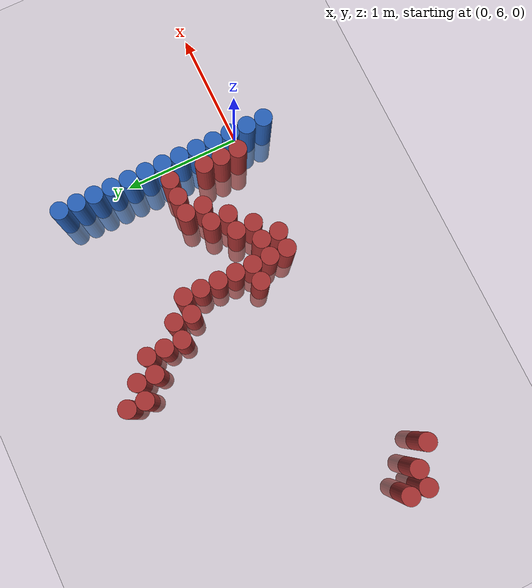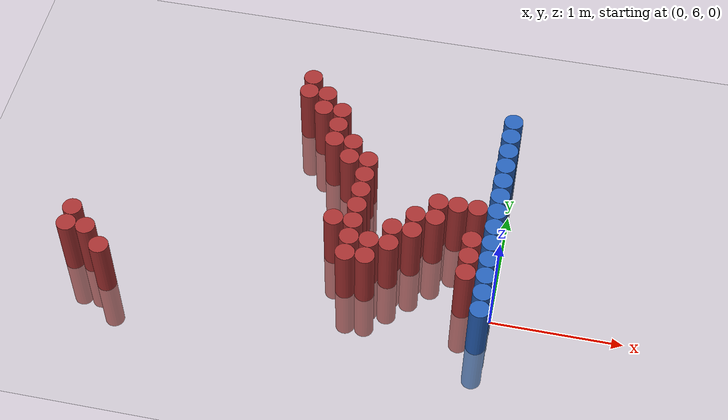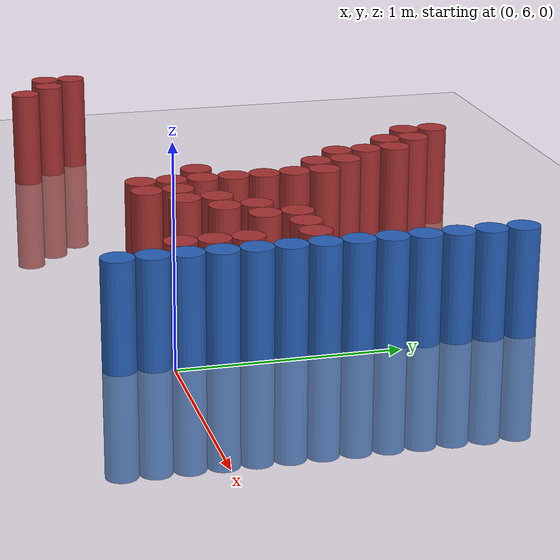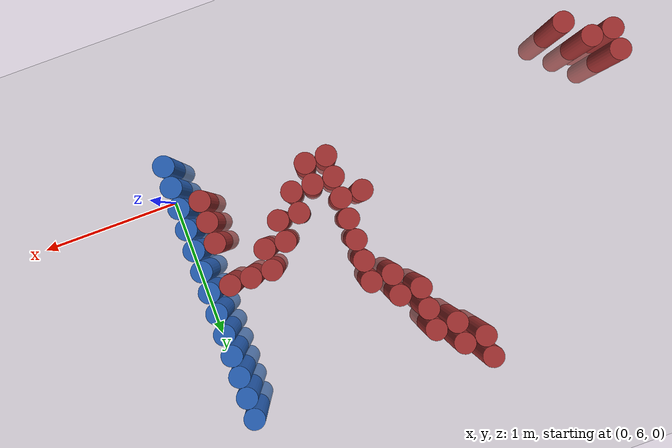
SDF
<sdf version="1.6">
 <world name="default">
  <model name="ground_plane">
   <static>1</static>
   <link name="link">
    <collision name="collision">
     <geometry><plane><normal>0 0 1</normal><size>100 100</size></plane></geometry>
     <surface><friction><ode><mu>100</mu><mu2>50</mu2></ode></friction></surface>
    </collision>
    <visual name="visual">
     <cast_shadows>0</cast_shadows>
     <geometry><plane><normal>0 0 1</normal><size>100 100</size></plane></geometry>
     <material>
      <script><uri>file://media/materials/scripts/gazebo.material</uri><name>Gazebo/Grey</name></script>
     </material>
    </visual>
   </link>
  </model>
  <model name="unit_cylinder_163">
   <static>1</static>
   <pose>-3.225000 5.925000 0.000000 0.000000 0.000000 0.000000</pose>
   <link name="link">
    <inertial>
     <mass>1</mass>
     <inertia><ixx>0.145833</ixx><ixy>0</ixy><ixz>0</ixz><iyy>0.145833</iyy><iyz>0</iyz><izz>0.125</izz></inertia>
    </inertial>
    <collision name="collision">
     <geometry><cylinder><radius>0.075000</radius><length>1</length></cylinder></geometry>
    </collision>
    <visual name="visual">
     <geometry><cylinder><radius>0.075000</radius><length>1</length></cylinder></geometry>
     <material>
      <ambient>0.648000 0.192000 0.192000 1</ambient>
      <diffuse>0.648000 0.192000 0.192000 1</diffuse>
     </material>
     <material>
      <script><name>Gazebo/Grey</name><uri>file://media/materials/scripts/gazebo.material</uri></script>
     </material>
    </visual>
   </link>
  </model>
  <model name="unit_cylinder_164">
   <static>1</static>
   <pose>-3.225000 6.075000 0.000000 0.000000 0.000000 0.000000</pose>
   <link name="link">
    <inertial>
     <mass>1</mass>
     <inertia><ixx>0.145833</ixx><ixy>0</ixy><ixz>0</ixz><iyy>0.145833</iyy><iyz>0</iyz><izz>0.125</izz></inertia>
    </inertial>
    <collision name="collision">
     <geometry><cylinder><radius>0.075000</radius><length>1</length></cylinder></geometry>
    </collision>
    <visual name="visual">
     <geometry><cylinder><radius>0.075000</radius><length>1</length></cylinder></geometry>
     <material>
      <ambient>0.648000 0.192000 0.192000 1</ambient>
      <diffuse>0.648000 0.192000 0.192000 1</diffuse>
     </material>
     <material>
      <script><name>Gazebo/Grey</name><uri>file://media/materials/scripts/gazebo.material</uri></script>
     </material>
    </visual>
   </link>
  </model>
  <model name="unit_cylinder_167">
   <static>1</static>
   <pose>-3.075000 5.925000 0.000000 0.000000 0.000000 0.000000</pose>
   <link name="link">
    <inertial>
     <mass>1</mass>
     <inertia><ixx>0.145833</ixx><ixy>0</ixy><ixz>0</ixz><iyy>0.145833</iyy><iyz>0</iyz><izz>0.125</izz></inertia>
    </inertial>
    <collision name="collision">
     <geometry><cylinder><radius>0.075000</radius><length>1</length></cylinder></geometry>
    </collision>
    <visual name="visual">
     <geometry><cylinder><radius>0.075000</radius><length>1</length></cylinder></geometry>
     <material>
      <ambient>0.648000 0.192000 0.192000 1</ambient>
      <diffuse>0.648000 0.192000 0.192000 1</diffuse>
     </material>
     <material>
      <script><name>Gazebo/Grey</name><uri>file://media/materials/scripts/gazebo.material</uri></script>
     </material>
    </visual>
   </link>
  </model>
  <model name="unit_cylinder_170">
   <static>1</static>
   <pose>-2.925000 5.775000 0.000000 0.000000 0.000000 0.000000</pose>
   <link name="link">
    <inertial>
     <mass>1</mass>
     <inertia><ixx>0.145833</ixx><ixy>0</ixy><ixz>0</ixz><iyy>0.145833</iyy><iyz>0</iyz><izz>0.125</izz></inertia>
    </inertial>
    <collision name="collision">
     <geometry><cylinder><radius>0.075000</radius><length>1</length></cylinder></geometry>
    </collision>
    <visual name="visual">
     <geometry><cylinder><radius>0.075000</radius><length>1</length></cylinder></geometry>
     <material>
      <ambient>0.648000 0.192000 0.192000 1</ambient>
      <diffuse>0.648000 0.192000 0.192000 1</diffuse>
     </material>
     <material>
      <script><name>Gazebo/Grey</name><uri>file://media/materials/scripts/gazebo.material</uri></script>
     </material>
    </visual>
   </link>
  </model>
  <model name="unit_cylinder_190">
   <static>1</static>
   <pose>-1.725000 7.575000 0.000000 0.000000 0.000000 0.000000</pose>
   <link name="link">
    <inertial>
     <mass>1</mass>
     <inertia><ixx>0.145833</ixx><ixy>0</ixy><ixz>0</ixz><iyy>0.145833</iyy><iyz>0</iyz><izz>0.125</izz></inertia>
    </inertial>
    <collision name="collision">
     <geometry><cylinder><radius>0.075000</radius><length>1</length></cylinder></geometry>
    </collision>
    <visual name="visual">
     <geometry><cylinder><radius>0.075000</radius><length>1</length></cylinder></geometry>
     <material>
      <ambient>0.648000 0.192000 0.192000 1</ambient>
      <diffuse>0.648000 0.192000 0.192000 1</diffuse>
     </material>
     <material>
      <script><name>Gazebo/Grey</name><uri>file://media/materials/scripts/gazebo.material</uri></script>
     </material>
    </visual>
   </link>
  </model>
  <model name="unit_cylinder_191">
   <static>1</static>
   <pose>-1.725000 7.725000 0.000000 0.000000 0.000000 0.000000</pose>
   <link name="link">
    <inertial>
     <mass>1</mass>
     <inertia><ixx>0.145833</ixx><ixy>0</ixy><ixz>0</ixz><iyy>0.145833</iyy><iyz>0</iyz><izz>0.125</izz></inertia>
    </inertial>
    <collision name="collision">
     <geometry><cylinder><radius>0.075000</radius><length>1</length></cylinder></geometry>
    </collision>
    <visual name="visual">
     <geometry><cylinder><radius>0.075000</radius><length>1</length></cylinder></geometry>
     <material>
      <ambient>0.648000 0.192000 0.192000 1</ambient>
      <diffuse>0.648000 0.192000 0.192000 1</diffuse>
     </material>
     <material>
      <script><name>Gazebo/Grey</name><uri>file://media/materials/scripts/gazebo.material</uri></script>
     </material>
    </visual>
   </link>
  </model>
  <model name="unit_cylinder_195">
   <static>1</static>
   <pose>-1.575000 7.425000 0.000000 0.000000 0.000000 0.000000</pose>
   <link name="link">
    <inertial>
     <mass>1</mass>
     <inertia><ixx>0.145833</ixx><ixy>0</ixy><ixz>0</ixz><iyy>0.145833</iyy><iyz>0</iyz><izz>0.125</izz></inertia>
    </inertial>
    <collision name="collision">
     <geometry><cylinder><radius>0.075000</radius><length>1</length></cylinder></geometry>
    </collision>
    <visual name="visual">
     <geometry><cylinder><radius>0.075000</radius><length>1</length></cylinder></geometry>
     <material>
      <ambient>0.648000 0.192000 0.192000 1</ambient>
      <diffuse>0.648000 0.192000 0.192000 1</diffuse>
     </material>
     <material>
      <script><name>Gazebo/Grey</name><uri>file://media/materials/scripts/gazebo.material</uri></script>
     </material>
    </visual>
   </link>
  </model>
  <model name="unit_cylinder_196">
   <static>1</static>
   <pose>-1.575000 7.575000 0.000000 0.000000 0.000000 0.000000</pose>
   <link name="link">
    <inertial>
     <mass>1</mass>
     <inertia><ixx>0.145833</ixx><ixy>0</ixy><ixz>0</ixz><iyy>0.145833</iyy><iyz>0</iyz><izz>0.125</izz></inertia>
    </inertial>
    <collision name="collision">
     <geometry><cylinder><radius>0.075000</radius><length>1</length></cylinder></geometry>
    </collision>
    <visual name="visual">
     <geometry><cylinder><radius>0.075000</radius><length>1</length></cylinder></geometry>
     <material>
      <ambient>0.648000 0.192000 0.192000 1</ambient>
      <diffuse>0.648000 0.192000 0.192000 1</diffuse>
     </material>
     <material>
      <script><name>Gazebo/Grey</name><uri>file://media/materials/scripts/gazebo.material</uri></script>
     </material>
    </visual>
   </link>
  </model>
  <model name="unit_cylinder_198">
   <static>1</static>
   <pose>-1.425000 7.125000 0.000000 0.000000 0.000000 0.000000</pose>
   <link name="link">
    <inertial>
     <mass>1</mass>
     <inertia><ixx>0.145833</ixx><ixy>0</ixy><ixz>0</ixz><iyy>0.145833</iyy><iyz>0</iyz><izz>0.125</izz></inertia>
    </inertial>
    <collision name="collision">
     <geometry><cylinder><radius>0.075000</radius><length>1</length></cylinder></geometry>
    </collision>
    <visual name="visual">
     <geometry><cylinder><radius>0.075000</radius><length>1</length></cylinder></geometry>
     <material>
      <ambient>0.648000 0.192000 0.192000 1</ambient>
      <diffuse>0.648000 0.192000 0.192000 1</diffuse>
     </material>
     <material>
      <script><name>Gazebo/Grey</name><uri>file://media/materials/scripts/gazebo.material</uri></script>
     </material>
    </visual>
   </link>
  </model>
  <model name="unit_cylinder_199">
   <static>1</static>
   <pose>-1.425000 7.275000 0.000000 0.000000 0.000000 0.000000</pose>
   <link name="link">
    <inertial>
     <mass>1</mass>
     <inertia><ixx>0.145833</ixx><ixy>0</ixy><ixz>0</ixz><iyy>0.145833</iyy><iyz>0</iyz><izz>0.125</izz></inertia>
    </inertial>
    <collision name="collision">
     <geometry><cylinder><radius>0.075000</radius><length>1</length></cylinder></geometry>
    </collision>
    <visual name="visual">
     <geometry><cylinder><radius>0.075000</radius><length>1</length></cylinder></geometry>
     <material>
      <ambient>0.648000 0.192000 0.192000 1</ambient>
      <diffuse>0.648000 0.192000 0.192000 1</diffuse>
     </material>
     <material>
      <script><name>Gazebo/Grey</name><uri>file://media/materials/scripts/gazebo.material</uri></script>
     </material>
    </visual>
   </link>
  </model>
  <model name="unit_cylinder_200">
   <static>1</static>
   <pose>-1.425000 7.425000 0.000000 0.000000 0.000000 0.000000</pose>
   <link name="link">
    <inertial>
     <mass>1</mass>
     <inertia><ixx>0.145833</ixx><ixy>0</ixy><ixz>0</ixz><iyy>0.145833</iyy><iyz>0</iyz><izz>0.125</izz></inertia>
    </inertial>
    <collision name="collision">
     <geometry><cylinder><radius>0.075000</radius><length>1</length></cylinder></geometry>
    </collision>
    <visual name="visual">
     <geometry><cylinder><radius>0.075000</radius><length>1</length></cylinder></geometry>
     <material>
      <ambient>0.648000 0.192000 0.192000 1</ambient>
      <diffuse>0.648000 0.192000 0.192000 1</diffuse>
     </material>
     <material>
      <script><name>Gazebo/Grey</name><uri>file://media/materials/scripts/gazebo.material</uri></script>
     </material>
    </visual>
   </link>
  </model>
  <model name="unit_cylinder_204">
   <static>1</static>
   <pose>-1.275000 6.375000 0.000000 0.000000 0.000000 0.000000</pose>
   <link name="link">
    <inertial>
     <mass>1</mass>
     <inertia><ixx>0.145833</ixx><ixy>0</ixy><ixz>0</ixz><iyy>0.145833</iyy><iyz>0</iyz><izz>0.125</izz></inertia>
    </inertial>
    <collision name="collision">
     <geometry><cylinder><radius>0.075000</radius><length>1</length></cylinder></geometry>
    </collision>
    <visual name="visual">
     <geometry><cylinder><radius>0.075000</radius><length>1</length></cylinder></geometry>
     <material>
      <ambient>0.648000 0.192000 0.192000 1</ambient>
      <diffuse>0.648000 0.192000 0.192000 1</diffuse>
     </material>
     <material>
      <script><name>Gazebo/Grey</name><uri>file://media/materials/scripts/gazebo.material</uri></script>
     </material>
    </visual>
   </link>
  </model>
  <model name="unit_cylinder_205">
   <static>1</static>
   <pose>-1.275000 6.975000 0.000000 0.000000 0.000000 0.000000</pose>
   <link name="link">
    <inertial>
     <mass>1</mass>
     <inertia><ixx>0.145833</ixx><ixy>0</ixy><ixz>0</ixz><iyy>0.145833</iyy><iyz>0</iyz><izz>0.125</izz></inertia>
    </inertial>
    <collision name="collision">
     <geometry><cylinder><radius>0.075000</radius><length>1</length></cylinder></geometry>
    </collision>
    <visual name="visual">
     <geometry><cylinder><radius>0.075000</radius><length>1</length></cylinder></geometry>
     <material>
      <ambient>0.648000 0.192000 0.192000 1</ambient>
      <diffuse>0.648000 0.192000 0.192000 1</diffuse>
     </material>
     <material>
      <script><name>Gazebo/Grey</name><uri>file://media/materials/scripts/gazebo.material</uri></script>
     </material>
    </visual>
   </link>
  </model>
  <model name="unit_cylinder_206">
   <static>1</static>
   <pose>-1.275000 7.125000 0.000000 0.000000 0.000000 0.000000</pose>
   <link name="link">
    <inertial>
     <mass>1</mass>
     <inertia><ixx>0.145833</ixx><ixy>0</ixy><ixz>0</ixz><iyy>0.145833</iyy><iyz>0</iyz><izz>0.125</izz></inertia>
    </inertial>
    <collision name="collision">
     <geometry><cylinder><radius>0.075000</radius><length>1</length></cylinder></geometry>
    </collision>
    <visual name="visual">
     <geometry><cylinder><radius>0.075000</radius><length>1</length></cylinder></geometry>
     <material>
      <ambient>0.648000 0.192000 0.192000 1</ambient>
      <diffuse>0.648000 0.192000 0.192000 1</diffuse>
     </material>
     <material>
      <script><name>Gazebo/Grey</name><uri>file://media/materials/scripts/gazebo.material</uri></script>
     </material>
    </visual>
   </link>
  </model>
  <model name="unit_cylinder_208">
   <static>1</static>
   <pose>-1.125000 6.075000 0.000000 0.000000 0.000000 0.000000</pose>
   <link name="link">
    <inertial>
     <mass>1</mass>
     <inertia><ixx>0.145833</ixx><ixy>0</ixy><ixz>0</ixz><iyy>0.145833</iyy><iyz>0</iyz><izz>0.125</izz></inertia>
    </inertial>
    <collision name="collision">
     <geometry><cylinder><radius>0.075000</radius><length>1</length></cylinder></geometry>
    </collision>
    <visual name="visual">
     <geometry><cylinder><radius>0.075000</radius><length>1</length></cylinder></geometry>
     <material>
      <ambient>0.648000 0.192000 0.192000 1</ambient>
      <diffuse>0.648000 0.192000 0.192000 1</diffuse>
     </material>
     <material>
      <script><name>Gazebo/Grey</name><uri>file://media/materials/scripts/gazebo.material</uri></script>
     </material>
    </visual>
   </link>
  </model>
  <model name="unit_cylinder_209">
   <static>1</static>
   <pose>-1.125000 6.225000 0.000000 0.000000 0.000000 0.000000</pose>
   <link name="link">
    <inertial>
     <mass>1</mass>
     <inertia><ixx>0.145833</ixx><ixy>0</ixy><ixz>0</ixz><iyy>0.145833</iyy><iyz>0</iyz><izz>0.125</izz></inertia>
    </inertial>
    <collision name="collision">
     <geometry><cylinder><radius>0.075000</radius><length>1</length></cylinder></geometry>
    </collision>
    <visual name="visual">
     <geometry><cylinder><radius>0.075000</radius><length>1</length></cylinder></geometry>
     <material>
      <ambient>0.648000 0.192000 0.192000 1</ambient>
      <diffuse>0.648000 0.192000 0.192000 1</diffuse>
     </material>
     <material>
      <script><name>Gazebo/Grey</name><uri>file://media/materials/scripts/gazebo.material</uri></script>
     </material>
    </visual>
   </link>
  </model>
  <model name="unit_cylinder_210">
   <static>1</static>
   <pose>-1.125000 6.375000 0.000000 0.000000 0.000000 0.000000</pose>
   <link name="link">
    <inertial>
     <mass>1</mass>
     <inertia><ixx>0.145833</ixx><ixy>0</ixy><ixz>0</ixz><iyy>0.145833</iyy><iyz>0</iyz><izz>0.125</izz></inertia>
    </inertial>
    <collision name="collision">
     <geometry><cylinder><radius>0.075000</radius><length>1</length></cylinder></geometry>
    </collision>
    <visual name="visual">
     <geometry><cylinder><radius>0.075000</radius><length>1</length></cylinder></geometry>
     <material>
      <ambient>0.648000 0.192000 0.192000 1</ambient>
      <diffuse>0.648000 0.192000 0.192000 1</diffuse>
     </material>
     <material>
      <script><name>Gazebo/Grey</name><uri>file://media/materials/scripts/gazebo.material</uri></script>
     </material>
    </visual>
   </link>
  </model>
  <model name="unit_cylinder_211">
   <static>1</static>
   <pose>-1.125000 6.525000 0.000000 0.000000 0.000000 0.000000</pose>
   <link name="link">
    <inertial>
     <mass>1</mass>
     <inertia><ixx>0.145833</ixx><ixy>0</ixy><ixz>0</ixz><iyy>0.145833</iyy><iyz>0</iyz><izz>0.125</izz></inertia>
    </inertial>
    <collision name="collision">
     <geometry><cylinder><radius>0.075000</radius><length>1</length></cylinder></geometry>
    </collision>
    <visual name="visual">
     <geometry><cylinder><radius>0.075000</radius><length>1</length></cylinder></geometry>
     <material>
      <ambient>0.648000 0.192000 0.192000 1</ambient>
      <diffuse>0.648000 0.192000 0.192000 1</diffuse>
     </material>
     <material>
      <script><name>Gazebo/Grey</name><uri>file://media/materials/scripts/gazebo.material</uri></script>
     </material>
    </visual>
   </link>
  </model>
  <model name="unit_cylinder_212">
   <static>1</static>
   <pose>-1.125000 6.675000 0.000000 0.000000 0.000000 0.000000</pose>
   <link name="link">
    <inertial>
     <mass>1</mass>
     <inertia><ixx>0.145833</ixx><ixy>0</ixy><ixz>0</ixz><iyy>0.145833</iyy><iyz>0</iyz><izz>0.125</izz></inertia>
    </inertial>
    <collision name="collision">
     <geometry><cylinder><radius>0.075000</radius><length>1</length></cylinder></geometry>
    </collision>
    <visual name="visual">
     <geometry><cylinder><radius>0.075000</radius><length>1</length></cylinder></geometry>
     <material>
      <ambient>0.648000 0.192000 0.192000 1</ambient>
      <diffuse>0.648000 0.192000 0.192000 1</diffuse>
     </material>
     <material>
      <script><name>Gazebo/Grey</name><uri>file://media/materials/scripts/gazebo.material</uri></script>
     </material>
    </visual>
   </link>
  </model>
  <model name="unit_cylinder_213">
   <static>1</static>
   <pose>-1.125000 6.825000 0.000000 0.000000 0.000000 0.000000</pose>
   <link name="link">
    <inertial>
     <mass>1</mass>
     <inertia><ixx>0.145833</ixx><ixy>0</ixy><ixz>0</ixz><iyy>0.145833</iyy><iyz>0</iyz><izz>0.125</izz></inertia>
    </inertial>
    <collision name="collision">
     <geometry><cylinder><radius>0.075000</radius><length>1</length></cylinder></geometry>
    </collision>
    <visual name="visual">
     <geometry><cylinder><radius>0.075000</radius><length>1</length></cylinder></geometry>
     <material>
      <ambient>0.648000 0.192000 0.192000 1</ambient>
      <diffuse>0.648000 0.192000 0.192000 1</diffuse>
     </material>
     <material>
      <script><name>Gazebo/Grey</name><uri>file://media/materials/scripts/gazebo.material</uri></script>
     </material>
    </visual>
   </link>
  </model>
  <model name="unit_cylinder_214">
   <static>1</static>
   <pose>-1.125000 6.975000 0.000000 0.000000 0.000000 0.000000</pose>
   <link name="link">
    <inertial>
     <mass>1</mass>
     <inertia><ixx>0.145833</ixx><ixy>0</ixy><ixz>0</ixz><iyy>0.145833</iyy><iyz>0</iyz><izz>0.125</izz></inertia>
    </inertial>
    <collision name="collision">
     <geometry><cylinder><radius>0.075000</radius><length>1</length></cylinder></geometry>
    </collision>
    <visual name="visual">
     <geometry><cylinder><radius>0.075000</radius><length>1</length></cylinder></geometry>
     <material>
      <ambient>0.648000 0.192000 0.192000 1</ambient>
      <diffuse>0.648000 0.192000 0.192000 1</diffuse>
     </material>
     <material>
      <script><name>Gazebo/Grey</name><uri>file://media/materials/scripts/gazebo.material</uri></script>
     </material>
    </visual>
   </link>
  </model>
  <model name="unit_cylinder_217">
   <static>1</static>
   <pose>-0.975000 6.075000 0.000000 0.000000 0.000000 0.000000</pose>
   <link name="link">
    <inertial>
     <mass>1</mass>
     <inertia><ixx>0.145833</ixx><ixy>0</ixy><ixz>0</ixz><iyy>0.145833</iyy><iyz>0</iyz><izz>0.125</izz></inertia>
    </inertial>
    <collision name="collision">
     <geometry><cylinder><radius>0.075000</radius><length>1</length></cylinder></geometry>
    </collision>
    <visual name="visual">
     <geometry><cylinder><radius>0.075000</radius><length>1</length></cylinder></geometry>
     <material>
      <ambient>0.648000 0.192000 0.192000 1</ambient>
      <diffuse>0.648000 0.192000 0.192000 1</diffuse>
     </material>
     <material>
      <script><name>Gazebo/Grey</name><uri>file://media/materials/scripts/gazebo.material</uri></script>
     </material>
    </visual>
   </link>
  </model>
  <model name="unit_cylinder_218">
   <static>1</static>
   <pose>-0.975000 6.225000 0.000000 0.000000 0.000000 0.000000</pose>
   <link name="link">
    <inertial>
     <mass>1</mass>
     <inertia><ixx>0.145833</ixx><ixy>0</ixy><ixz>0</ixz><iyy>0.145833</iyy><iyz>0</iyz><izz>0.125</izz></inertia>
    </inertial>
    <collision name="collision">
     <geometry><cylinder><radius>0.075000</radius><length>1</length></cylinder></geometry>
    </collision>
    <visual name="visual">
     <geometry><cylinder><radius>0.075000</radius><length>1</length></cylinder></geometry>
     <material>
      <ambient>0.648000 0.192000 0.192000 1</ambient>
      <diffuse>0.648000 0.192000 0.192000 1</diffuse>
     </material>
     <material>
      <script><name>Gazebo/Grey</name><uri>file://media/materials/scripts/gazebo.material</uri></script>
     </material>
    </visual>
   </link>
  </model>
  <model name="unit_cylinder_224">
   <static>1</static>
   <pose>-0.825000 6.225000 0.000000 0.000000 0.000000 0.000000</pose>
   <link name="link">
    <inertial>
     <mass>1</mass>
     <inertia><ixx>0.145833</ixx><ixy>0</ixy><ixz>0</ixz><iyy>0.145833</iyy><iyz>0</iyz><izz>0.125</izz></inertia>
    </inertial>
    <collision name="collision">
     <geometry><cylinder><radius>0.075000</radius><length>1</length></cylinder></geometry>
    </collision>
    <visual name="visual">
     <geometry><cylinder><radius>0.075000</radius><length>1</length></cylinder></geometry>
     <material>
      <ambient>0.648000 0.192000 0.192000 1</ambient>
      <diffuse>0.648000 0.192000 0.192000 1</diffuse>
     </material>
     <material>
      <script><name>Gazebo/Grey</name><uri>file://media/materials/scripts/gazebo.material</uri></script>
     </material>
    </visual>
   </link>
  </model>
  <model name="unit_cylinder_225">
   <static>1</static>
   <pose>-0.825000 6.375000 0.000000 0.000000 0.000000 0.000000</pose>
   <link name="link">
    <inertial>
     <mass>1</mass>
     <inertia><ixx>0.145833</ixx><ixy>0</ixy><ixz>0</ixz><iyy>0.145833</iyy><iyz>0</iyz><izz>0.125</izz></inertia>
    </inertial>
    <collision name="collision">
     <geometry><cylinder><radius>0.075000</radius><length>1</length></cylinder></geometry>
    </collision>
    <visual name="visual">
     <geometry><cylinder><radius>0.075000</radius><length>1</length></cylinder></geometry>
     <material>
      <ambient>0.648000 0.192000 0.192000 1</ambient>
      <diffuse>0.648000 0.192000 0.192000 1</diffuse>
     </material>
     <material>
      <script><name>Gazebo/Grey</name><uri>file://media/materials/scripts/gazebo.material</uri></script>
     </material>
    </visual>
   </link>
  </model>
  <model name="unit_cylinder_230">
   <static>1</static>
   <pose>-0.675000 6.375000 0.000000 0.000000 0.000000 0.000000</pose>
   <link name="link">
    <inertial>
     <mass>1</mass>
     <inertia><ixx>0.145833</ixx><ixy>0</ixy><ixz>0</ixz><iyy>0.145833</iyy><iyz>0</iyz><izz>0.125</izz></inertia>
    </inertial>
    <collision name="collision">
     <geometry><cylinder><radius>0.075000</radius><length>1</length></cylinder></geometry>
    </collision>
    <visual name="visual">
     <geometry><cylinder><radius>0.075000</radius><length>1</length></cylinder></geometry>
     <material>
      <ambient>0.648000 0.192000 0.192000 1</ambient>
      <diffuse>0.648000 0.192000 0.192000 1</diffuse>
     </material>
     <material>
      <script><name>Gazebo/Grey</name><uri>file://media/materials/scripts/gazebo.material</uri></script>
     </material>
    </visual>
   </link>
  </model>
  <model name="unit_cylinder_231">
   <static>1</static>
   <pose>-0.675000 6.525000 0.000000 0.000000 0.000000 0.000000</pose>
   <link name="link">
    <inertial>
     <mass>1</mass>
     <inertia><ixx>0.145833</ixx><ixy>0</ixy><ixz>0</ixz><iyy>0.145833</iyy><iyz>0</iyz><izz>0.125</izz></inertia>
    </inertial>
    <collision name="collision">
     <geometry><cylinder><radius>0.075000</radius><length>1</length></cylinder></geometry>
    </collision>
    <visual name="visual">
     <geometry><cylinder><radius>0.075000</radius><length>1</length></cylinder></geometry>
     <material>
      <ambient>0.648000 0.192000 0.192000 1</ambient>
      <diffuse>0.648000 0.192000 0.192000 1</diffuse>
     </material>
     <material>
      <script><name>Gazebo/Grey</name><uri>file://media/materials/scripts/gazebo.material</uri></script>
     </material>
    </visual>
   </link>
  </model>
  <model name="unit_cylinder_236">
   <static>1</static>
   <pose>-0.525000 6.525000 0.000000 0.000000 0.000000 0.000000</pose>
   <link name="link">
    <inertial>
     <mass>1</mass>
     <inertia><ixx>0.145833</ixx><ixy>0</ixy><ixz>0</ixz><iyy>0.145833</iyy><iyz>0</iyz><izz>0.125</izz></inertia>
    </inertial>
    <collision name="collision">
     <geometry><cylinder><radius>0.075000</radius><length>1</length></cylinder></geometry>
    </collision>
    <visual name="visual">
     <geometry><cylinder><radius>0.075000</radius><length>1</length></cylinder></geometry>
     <material>
      <ambient>0.648000 0.192000 0.192000 1</ambient>
      <diffuse>0.648000 0.192000 0.192000 1</diffuse>
     </material>
     <material>
      <script><name>Gazebo/Grey</name><uri>file://media/materials/scripts/gazebo.material</uri></script>
     </material>
    </visual>
   </link>
  </model>
  <model name="unit_cylinder_237">
   <static>1</static>
   <pose>-0.525000 6.675000 0.000000 0.000000 0.000000 0.000000</pose>
   <link name="link">
    <inertial>
     <mass>1</mass>
     <inertia><ixx>0.145833</ixx><ixy>0</ixy><ixz>0</ixz><iyy>0.145833</iyy><iyz>0</iyz><izz>0.125</izz></inertia>
    </inertial>
    <collision name="collision">
     <geometry><cylinder><radius>0.075000</radius><length>1</length></cylinder></geometry>
    </collision>
    <visual name="visual">
     <geometry><cylinder><radius>0.075000</radius><length>1</length></cylinder></geometry>
     <material>
      <ambient>0.648000 0.192000 0.192000 1</ambient>
      <diffuse>0.648000 0.192000 0.192000 1</diffuse>
     </material>
     <material>
      <script><name>Gazebo/Grey</name><uri>file://media/materials/scripts/gazebo.material</uri></script>
     </material>
    </visual>
   </link>
  </model>
  <model name="unit_cylinder_244">
   <static>1</static>
   <pose>-0.375000 6.675000 0.000000 0.000000 0.000000 0.000000</pose>
   <link name="link">
    <inertial>
     <mass>1</mass>
     <inertia><ixx>0.145833</ixx><ixy>0</ixy><ixz>0</ixz><iyy>0.145833</iyy><iyz>0</iyz><izz>0.125</izz></inertia>
    </inertial>
    <collision name="collision">
     <geometry><cylinder><radius>0.075000</radius><length>1</length></cylinder></geometry>
    </collision>
    <visual name="visual">
     <geometry><cylinder><radius>0.075000</radius><length>1</length></cylinder></geometry>
     <material>
      <ambient>0.648000 0.192000 0.192000 1</ambient>
      <diffuse>0.648000 0.192000 0.192000 1</diffuse>
     </material>
     <material>
      <script><name>Gazebo/Grey</name><uri>file://media/materials/scripts/gazebo.material</uri></script>
     </material>
    </visual>
   </link>
  </model>
  <model name="unit_cylinder_248">
   <static>1</static>
   <pose>-0.225000 6.075000 0.000000 0.000000 0.000000 0.000000</pose>
   <link name="link">
    <inertial>
     <mass>1</mass>
     <inertia><ixx>0.145833</ixx><ixy>0</ixy><ixz>0</ixz><iyy>0.145833</iyy><iyz>0</iyz><izz>0.125</izz></inertia>
    </inertial>
    <collision name="collision">
     <geometry><cylinder><radius>0.075000</radius><length>1</length></cylinder></geometry>
    </collision>
    <visual name="visual">
     <geometry><cylinder><radius>0.075000</radius><length>1</length></cylinder></geometry>
     <material>
      <ambient>0.648000 0.192000 0.192000 1</ambient>
      <diffuse>0.648000 0.192000 0.192000 1</diffuse>
     </material>
     <material>
      <script><name>Gazebo/Grey</name><uri>file://media/materials/scripts/gazebo.material</uri></script>
     </material>
    </visual>
   </link>
  </model>
  <model name="unit_cylinder_249">
   <static>1</static>
   <pose>-0.225000 6.225000 0.000000 0.000000 0.000000 0.000000</pose>
   <link name="link">
    <inertial>
     <mass>1</mass>
     <inertia><ixx>0.145833</ixx><ixy>0</ixy><ixz>0</ixz><iyy>0.145833</iyy><iyz>0</iyz><izz>0.125</izz></inertia>
    </inertial>
    <collision name="collision">
     <geometry><cylinder><radius>0.075000</radius><length>1</length></cylinder></geometry>
    </collision>
    <visual name="visual">
     <geometry><cylinder><radius>0.075000</radius><length>1</length></cylinder></geometry>
     <material>
      <ambient>0.648000 0.192000 0.192000 1</ambient>
      <diffuse>0.648000 0.192000 0.192000 1</diffuse>
     </material>
     <material>
      <script><name>Gazebo/Grey</name><uri>file://media/materials/scripts/gazebo.material</uri></script>
     </material>
    </visual>
   </link>
  </model>
  <model name="unit_cylinder_250">
   <static>1</static>
   <pose>-0.225000 6.375000 0.000000 0.000000 0.000000 0.000000</pose>
   <link name="link">
    <inertial>
     <mass>1</mass>
     <inertia><ixx>0.145833</ixx><ixy>0</ixy><ixz>0</ixz><iyy>0.145833</iyy><iyz>0</iyz><izz>0.125</izz></inertia>
    </inertial>
    <collision name="collision">
     <geometry><cylinder><radius>0.075000</radius><length>1</length></cylinder></geometry>
    </collision>
    <visual name="visual">
     <geometry><cylinder><radius>0.075000</radius><length>1</length></cylinder></geometry>
     <material>
      <ambient>0.648000 0.192000 0.192000 1</ambient>
      <diffuse>0.648000 0.192000 0.192000 1</diffuse>
     </material>
     <material>
      <script><name>Gazebo/Grey</name><uri>file://media/materials/scripts/gazebo.material</uri></script>
     </material>
    </visual>
   </link>
  </model>
  <model name="unit_cylinder_251">
   <static>1</static>
   <pose>-0.225000 6.675000 0.000000 0.000000 0.000000 0.000000</pose>
   <link name="link">
    <inertial>
     <mass>1</mass>
     <inertia><ixx>0.145833</ixx><ixy>0</ixy><ixz>0</ixz><iyy>0.145833</iyy><iyz>0</iyz><izz>0.125</izz></inertia>
    </inertial>
    <collision name="collision">
     <geometry><cylinder><radius>0.075000</radius><length>1</length></cylinder></geometry>
    </collision>
    <visual name="visual">
     <geometry><cylinder><radius>0.075000</radius><length>1</length></cylinder></geometry>
     <material>
      <ambient>0.648000 0.192000 0.192000 1</ambient>
      <diffuse>0.648000 0.192000 0.192000 1</diffuse>
     </material>
     <material>
      <script><name>Gazebo/Grey</name><uri>file://media/materials/scripts/gazebo.material</uri></script>
     </material>
    </visual>
   </link>
  </model>
  <model name="unit_cylinder_259">
   <static>1</static>
   <pose>-0.075000 5.775000 0.000000 0.000000 0.000000 0.000000</pose>
   <link name="link">
    <inertial>
     <mass>1</mass>
     <inertia><ixx>0.145833</ixx><ixy>0</ixy><ixz>0</ixz><iyy>0.145833</iyy><iyz>0</iyz><izz>0.125</izz></inertia>
    </inertial>
    <collision name="collision">
     <geometry><cylinder><radius>0.075000</radius><length>1</length></cylinder></geometry>
    </collision>
    <visual name="visual">
     <geometry><cylinder><radius>0.075000</radius><length>1</length></cylinder></geometry>
     <material>
      <ambient>0.152000 0.379000 0.720000 1</ambient>
      <diffuse>0.152000 0.379000 0.720000 1</diffuse>
     </material>
     <material>
      <script><name>Gazebo/Grey</name><uri>file://media/materials/scripts/gazebo.material</uri></script>
     </material>
    </visual>
   </link>
  </model>
  <model name="unit_cylinder_260">
   <static>1</static>
   <pose>-0.075000 5.925000 0.000000 0.000000 0.000000 0.000000</pose>
   <link name="link">
    <inertial>
     <mass>1</mass>
     <inertia><ixx>0.145833</ixx><ixy>0</ixy><ixz>0</ixz><iyy>0.145833</iyy><iyz>0</iyz><izz>0.125</izz></inertia>
    </inertial>
    <collision name="collision">
     <geometry><cylinder><radius>0.075000</radius><length>1</length></cylinder></geometry>
    </collision>
    <visual name="visual">
     <geometry><cylinder><radius>0.075000</radius><length>1</length></cylinder></geometry>
     <material>
      <ambient>0.152000 0.379000 0.720000 1</ambient>
      <diffuse>0.152000 0.379000 0.720000 1</diffuse>
     </material>
     <material>
      <script><name>Gazebo/Grey</name><uri>file://media/materials/scripts/gazebo.material</uri></script>
     </material>
    </visual>
   </link>
  </model>
  <model name="unit_cylinder_261">
   <static>1</static>
   <pose>-0.075000 6.075000 0.000000 0.000000 0.000000 0.000000</pose>
   <link name="link">
    <inertial>
     <mass>1</mass>
     <inertia><ixx>0.145833</ixx><ixy>0</ixy><ixz>0</ixz><iyy>0.145833</iyy><iyz>0</iyz><izz>0.125</izz></inertia>
    </inertial>
    <collision name="collision">
     <geometry><cylinder><radius>0.075000</radius><length>1</length></cylinder></geometry>
    </collision>
    <visual name="visual">
     <geometry><cylinder><radius>0.075000</radius><length>1</length></cylinder></geometry>
     <material>
      <ambient>0.152000 0.379000 0.720000 1</ambient>
      <diffuse>0.152000 0.379000 0.720000 1</diffuse>
     </material>
     <material>
      <script><name>Gazebo/Grey</name><uri>file://media/materials/scripts/gazebo.material</uri></script>
     </material>
    </visual>
   </link>
  </model>
  <model name="unit_cylinder_262">
   <static>1</static>
   <pose>-0.075000 6.225000 0.000000 0.000000 0.000000 0.000000</pose>
   <link name="link">
    <inertial>
     <mass>1</mass>
     <inertia><ixx>0.145833</ixx><ixy>0</ixy><ixz>0</ixz><iyy>0.145833</iyy><iyz>0</iyz><izz>0.125</izz></inertia>
    </inertial>
    <collision name="collision">
     <geometry><cylinder><radius>0.075000</radius><length>1</length></cylinder></geometry>
    </collision>
    <visual name="visual">
     <geometry><cylinder><radius>0.075000</radius><length>1</length></cylinder></geometry>
     <material>
      <ambient>0.152000 0.379000 0.720000 1</ambient>
      <diffuse>0.152000 0.379000 0.720000 1</diffuse>
     </material>
     <material>
      <script><name>Gazebo/Grey</name><uri>file://media/materials/scripts/gazebo.material</uri></script>
     </material>
    </visual>
   </link>
  </model>
  <model name="unit_cylinder_263">
   <static>1</static>
   <pose>-0.075000 6.375000 0.000000 0.000000 0.000000 0.000000</pose>
   <link name="link">
    <inertial>
     <mass>1</mass>
     <inertia><ixx>0.145833</ixx><ixy>0</ixy><ixz>0</ixz><iyy>0.145833</iyy><iyz>0</iyz><izz>0.125</izz></inertia>
    </inertial>
    <collision name="collision">
     <geometry><cylinder><radius>0.075000</radius><length>1</length></cylinder></geometry>
    </collision>
    <visual name="visual">
     <geometry><cylinder><radius>0.075000</radius><length>1</length></cylinder></geometry>
     <material>
      <ambient>0.152000 0.379000 0.720000 1</ambient>
      <diffuse>0.152000 0.379000 0.720000 1</diffuse>
     </material>
     <material>
      <script><name>Gazebo/Grey</name><uri>file://media/materials/scripts/gazebo.material</uri></script>
     </material>
    </visual>
   </link>
  </model>
  <model name="unit_cylinder_264">
   <static>1</static>
   <pose>-0.075000 6.525000 0.000000 0.000000 0.000000 0.000000</pose>
   <link name="link">
    <inertial>
     <mass>1</mass>
     <inertia><ixx>0.145833</ixx><ixy>0</ixy><ixz>0</ixz><iyy>0.145833</iyy><iyz>0</iyz><izz>0.125</izz></inertia>
    </inertial>
    <collision name="collision">
     <geometry><cylinder><radius>0.075000</radius><length>1</length></cylinder></geometry>
    </collision>
    <visual name="visual">
     <geometry><cylinder><radius>0.075000</radius><length>1</length></cylinder></geometry>
     <material>
      <ambient>0.152000 0.379000 0.720000 1</ambient>
      <diffuse>0.152000 0.379000 0.720000 1</diffuse>
     </material>
     <material>
      <script><name>Gazebo/Grey</name><uri>file://media/materials/scripts/gazebo.material</uri></script>
     </material>
    </visual>
   </link>
  </model>
  <model name="unit_cylinder_265">
   <static>1</static>
   <pose>-0.075000 6.675000 0.000000 0.000000 0.000000 0.000000</pose>
   <link name="link">
    <inertial>
     <mass>1</mass>
     <inertia><ixx>0.145833</ixx><ixy>0</ixy><ixz>0</ixz><iyy>0.145833</iyy><iyz>0</iyz><izz>0.125</izz></inertia>
    </inertial>
    <collision name="collision">
     <geometry><cylinder><radius>0.075000</radius><length>1</length></cylinder></geometry>
    </collision>
    <visual name="visual">
     <geometry><cylinder><radius>0.075000</radius><length>1</length></cylinder></geometry>
     <material>
      <ambient>0.152000 0.379000 0.720000 1</ambient>
      <diffuse>0.152000 0.379000 0.720000 1</diffuse>
     </material>
     <material>
      <script><name>Gazebo/Grey</name><uri>file://media/materials/scripts/gazebo.material</uri></script>
     </material>
    </visual>
   </link>
  </model>
  <model name="unit_cylinder_266">
   <static>1</static>
   <pose>-0.075000 6.825000 0.000000 0.000000 0.000000 0.000000</pose>
   <link name="link">
    <inertial>
     <mass>1</mass>
     <inertia><ixx>0.145833</ixx><ixy>0</ixy><ixz>0</ixz><iyy>0.145833</iyy><iyz>0</iyz><izz>0.125</izz></inertia>
    </inertial>
    <collision name="collision">
     <geometry><cylinder><radius>0.075000</radius><length>1</length></cylinder></geometry>
    </collision>
    <visual name="visual">
     <geometry><cylinder><radius>0.075000</radius><length>1</length></cylinder></geometry>
     <material>
      <ambient>0.152000 0.379000 0.720000 1</ambient>
      <diffuse>0.152000 0.379000 0.720000 1</diffuse>
     </material>
     <material>
      <script><name>Gazebo/Grey</name><uri>file://media/materials/scripts/gazebo.material</uri></script>
     </material>
    </visual>
   </link>
  </model>
  <model name="unit_cylinder_267">
   <static>1</static>
   <pose>-0.075000 6.975000 0.000000 0.000000 0.000000 0.000000</pose>
   <link name="link">
    <inertial>
     <mass>1</mass>
     <inertia><ixx>0.145833</ixx><ixy>0</ixy><ixz>0</ixz><iyy>0.145833</iyy><iyz>0</iyz><izz>0.125</izz></inertia>
    </inertial>
    <collision name="collision">
     <geometry><cylinder><radius>0.075000</radius><length>1</length></cylinder></geometry>
    </collision>
    <visual name="visual">
     <geometry><cylinder><radius>0.075000</radius><length>1</length></cylinder></geometry>
     <material>
      <ambient>0.152000 0.379000 0.720000 1</ambient>
      <diffuse>0.152000 0.379000 0.720000 1</diffuse>
     </material>
     <material>
      <script><name>Gazebo/Grey</name><uri>file://media/materials/scripts/gazebo.material</uri></script>
     </material>
    </visual>
   </link>
  </model>
  <model name="unit_cylinder_268">
   <static>1</static>
   <pose>-0.075000 7.125000 0.000000 0.000000 0.000000 0.000000</pose>
   <link name="link">
    <inertial>
     <mass>1</mass>
     <inertia><ixx>0.145833</ixx><ixy>0</ixy><ixz>0</ixz><iyy>0.145833</iyy><iyz>0</iyz><izz>0.125</izz></inertia>
    </inertial>
    <collision name="collision">
     <geometry><cylinder><radius>0.075000</radius><length>1</length></cylinder></geometry>
    </collision>
    <visual name="visual">
     <geometry><cylinder><radius>0.075000</radius><length>1</length></cylinder></geometry>
     <material>
      <ambient>0.152000 0.379000 0.720000 1</ambient>
      <diffuse>0.152000 0.379000 0.720000 1</diffuse>
     </material>
     <material>
      <script><name>Gazebo/Grey</name><uri>file://media/materials/scripts/gazebo.material</uri></script>
     </material>
    </visual>
   </link>
  </model>
  <model name="unit_cylinder_269">
   <static>1</static>
   <pose>-0.075000 7.275000 0.000000 0.000000 0.000000 0.000000</pose>
   <link name="link">
    <inertial>
     <mass>1</mass>
     <inertia><ixx>0.145833</ixx><ixy>0</ixy><ixz>0</ixz><iyy>0.145833</iyy><iyz>0</iyz><izz>0.125</izz></inertia>
    </inertial>
    <collision name="collision">
     <geometry><cylinder><radius>0.075000</radius><length>1</length></cylinder></geometry>
    </collision>
    <visual name="visual">
     <geometry><cylinder><radius>0.075000</radius><length>1</length></cylinder></geometry>
     <material>
      <ambient>0.152000 0.379000 0.720000 1</ambient>
      <diffuse>0.152000 0.379000 0.720000 1</diffuse>
     </material>
     <material>
      <script><name>Gazebo/Grey</name><uri>file://media/materials/scripts/gazebo.material</uri></script>
     </material>
    </visual>
   </link>
  </model>
  <model name="unit_cylinder_270">
   <static>1</static>
   <pose>-0.075000 7.425000 0.000000 0.000000 0.000000 0.000000</pose>
   <link name="link">
    <inertial>
     <mass>1</mass>
     <inertia><ixx>0.145833</ixx><ixy>0</ixy><ixz>0</ixz><iyy>0.145833</iyy><iyz>0</iyz><izz>0.125</izz></inertia>
    </inertial>
    <collision name="collision">
     <geometry><cylinder><radius>0.075000</radius><length>1</length></cylinder></geometry>
    </collision>
    <visual name="visual">
     <geometry><cylinder><radius>0.075000</radius><length>1</length></cylinder></geometry>
     <material>
      <ambient>0.152000 0.379000 0.720000 1</ambient>
      <diffuse>0.152000 0.379000 0.720000 1</diffuse>
     </material>
     <material>
      <script><name>Gazebo/Grey</name><uri>file://media/materials/scripts/gazebo.material</uri></script>
     </material>
    </visual>
   </link>
  </model>
  <model name="unit_cylinder_271">
   <static>1</static>
   <pose>-0.075000 7.575000 0.000000 0.000000 0.000000 0.000000</pose>
   <link name="link">
    <inertial>
     <mass>1</mass>
     <inertia><ixx>0.145833</ixx><ixy>0</ixy><ixz>0</ixz><iyy>0.145833</iyy><iyz>0</iyz><izz>0.125</izz></inertia>
    </inertial>
    <collision name="collision">
     <geometry><cylinder><radius>0.075000</radius><length>1</length></cylinder></geometry>
    </collision>
    <visual name="visual">
     <geometry><cylinder><radius>0.075000</radius><length>1</length></cylinder></geometry>
     <material>
      <ambient>0.152000 0.379000 0.720000 1</ambient>
      <diffuse>0.152000 0.379000 0.720000 1</diffuse>
     </material>
     <material>
      <script><name>Gazebo/Grey</name><uri>file://media/materials/scripts/gazebo.material</uri></script>
     </material>
    </visual>
   </link>
  </model>
 </world>
</sdf>
